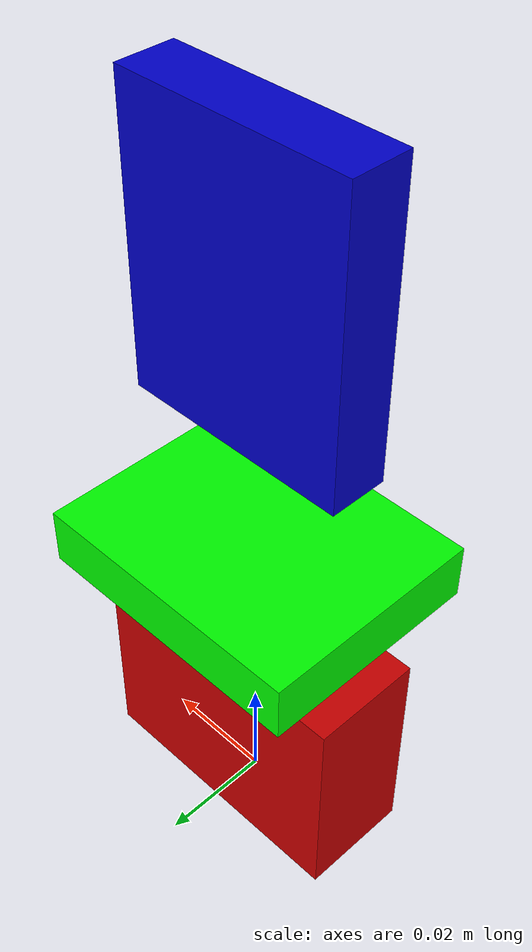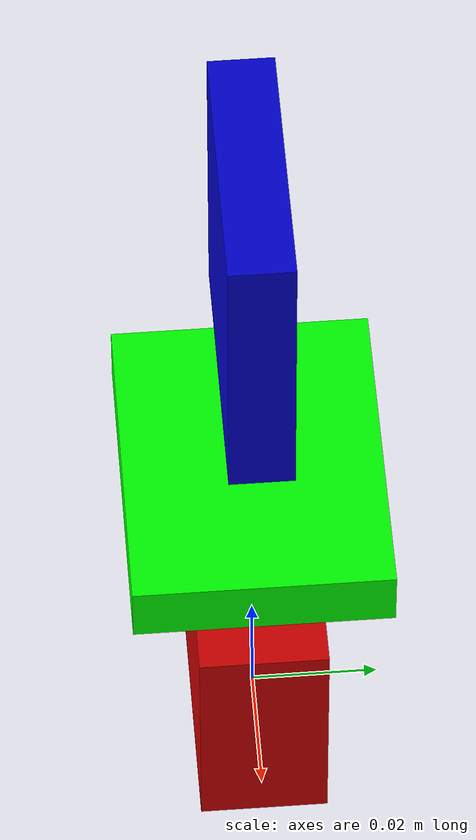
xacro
<?xml version="1.0"?>
<!-- 2DOF camera platform -->
<!-- https://www.aliexpress.com/item/1005005484954172.html -->

<robot xmlns:xacro="http://www.ros.org/wiki/xacro" name="2dof_robot">

  <!-- Import RRBot macro -->
  <xacro:include filename="$(find rrbot)/urdf/description.xacro" />

  <!-- Import Rviz colors -->
  <xacro:include filename="$(find rrbot)/urdf/materials.xacro" />

  <!-- Import RRBot ros2_control description -->
  <xacro:include filename="$(find rrbot)/urdf/control.xacro" />

  <!-- Used for fixing robot -->
  <link name="world"/>

  <xacro:rrbot parent="world">
    <origin xyz="0 0 0" rpy="0 0 0" />
  </xacro:rrbot>

  <xacro:control name="RRBot" />

</robot>

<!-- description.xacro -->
<!-- 2DOF camera platform -->
<!-- https://www.aliexpress.com/item/1005005484954172.html -->
<robot  xmlns:xacro="http://www.ros.org/wiki/xacro">

  <xacro:macro name="rrbot" params="parent *origin">

  <!-- Constants for robot dimensions -->
  <xacro:property name="base_width" value="0.05" />   <!-- Beams are square in length and width -->
  <xacro:property name="base_depth" value="0.02" />   <!-- Beams are square in length and width -->
  <xacro:property name="base_height" value="0.04" />   <!-- Base Link  -->
  <xacro:property name="mid_width" value="0.05" />   <!-- Beams are square in length and width -->
  <xacro:property name="mid_depth" value="0.04" />   <!-- Beams are square in length and width -->
  <xacro:property name="mid_height" value="0.01" />   <!-- Mid Link  -->
  <xacro:property name="top_width" value="0.04" />   <!-- Beams are square in length and width -->
  <xacro:property name="top_depth" value="0.01" />   <!-- Beams are square in length and width -->
  <xacro:property name="top_height" value="0.05" />   <!-- Mid Link  -->
  <xacro:property name="axle_offset" value="0.005" /> <!-- Space between joint and end of beam -->
  <xacro:property name="damp" value="0.7" />    <!-- damping coefficient -->

  <!-- Import Gazebo elements, including Gazebo colors -->
  <xacro:include filename="$(find rrbot)/urdf/gz.xacro" />

  <!-- Import RRBot ros2_control description -->
  <xacro:include filename="$(find rrbot)/urdf/control.xacro" />

  <joint name="base_joint" type="fixed">
    <xacro:insert_block name="origin" />
    <parent link="${parent}"/>
    <child link="base_link" />
  </joint>

  <!-- Base Link -->
  <link name="base_link">
    <visual>
      <origin xyz="0 0 ${base_height/2}" rpy="0 0 0"/>
      <geometry>
	      <box size="${base_width} ${base_depth} ${base_height}"/>
      </geometry>
       <material name="red"/>
    </visual>

    <collision>
      <origin xyz="0 0 ${base_height/2}" rpy="0 0 0"/>
      <geometry>
	      <box size="${base_width} ${base_depth} ${base_height}"/>
      </geometry>
    </collision>

    <inertial>
      <origin xyz="0 0 ${base_height/2}" rpy="0 0 0"/>
      <mass value="1"/>
      <inertia
	  ixx="1.0" ixy="0.0" ixz="0.0"
	  iyy="1.0" iyz="0.0"
	  izz="1.0"/>
    </inertial>
  </link>

  <!-- Joint between Base Link and Middle Link -->
  <joint name="joint_base_mid" type="revolute">
    <parent link="base_link"/>
    <child link="mid_link"/>
    <origin xyz="0 0 ${base_height + axle_offset}" rpy="0 0 0"/>
    <axis xyz="0 0 1"/>
    <dynamics damping="${damp}"/>
    <limit effort="100.0" velocity="0.5" lower="-1.57" upper="1.57" />
  </joint>

  <!-- Middle Link -->
  <link name="mid_link">
    <visual>
      <origin xyz="0 0 ${mid_height/2 + axle_offset}" rpy="0 0 0"/>
      <geometry>
	      <box size="${mid_width} ${mid_depth} ${mid_height}"/>
      </geometry>
       <material name="green"/>
    </visual>

    <collision>
      <origin xyz="0 0 ${mid_height/2 + axle_offset}" rpy="0 0 0"/>
      <geometry>
	      <box size="${mid_width} ${mid_depth} ${mid_height}"/>
      </geometry>
    </collision>

    <inertial>
      <origin xyz="0 0 ${mid_height/2 + axle_offset}" rpy="0 0 0"/>
      <mass value="1"/>
      <inertia
	  ixx="1.0" ixy="0.0" ixz="0.0"
	  iyy="1.0" iyz="0.0"
	  izz="1.0"/>
    </inertial>
  </link>

  <!-- Joint between Middle Link and Top Link -->
  <joint name="joint_mid_top" type="revolute">
    <parent link="mid_link"/>
    <child link="top_link"/>
    <origin xyz="0 0 ${top_height + axle_offset*2}" rpy="0 0 0"/>
    <axis xyz="1 0 0"/>
    <dynamics damping="${damp}"/>
    <limit effort="100.0" velocity="0.5" lower="-1.57" upper="1.57" />
  </joint>

  <!-- Top Link -->
  <link name="top_link">
    <visual>
      <origin xyz="0 0 0" rpy="0 0 0"/>
      <geometry>
	      <box size="${top_width} ${top_depth} ${top_height}"/>
      </geometry>
      <material name="blue"/>
    </visual>

    <collision>
      <origin xyz="0 0 ${top_height/2 - axle_offset}" rpy="0 0 0"/>
      <geometry>
	<box size="${top_width} ${top_depth} ${top_height}"/>
      </geometry>
    </collision>

    <inertial>
      <origin xyz="0 0 0" rpy="0 0 0"/>
      <mass value="1"/>
      <inertia
	  ixx="1.0" ixy="0.0" ixz="0.0"
	  iyy="1.0" iyz="0.0"
	  izz="1.0"/>
    </inertial>
  </link>
  </xacro:macro>
</robot>

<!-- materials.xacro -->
<robot>

  <material name="black">
    <color rgba="0.0 0.0 0.0 1.0"/>
  </material>

  <material name="blue">
    <color rgba="0.0 0.0 0.8 1.0"/>
  </material>

  <material name="green">
    <color rgba="0.0 1.0 0.0 1.0"/>
  </material>

  <material name="grey">
    <color rgba="0.2 0.2 0.2 1.0"/>
  </material>

  <material name="orange">
    <color rgba="${255/255} ${108/255} ${10/255} 1.0"/>
  </material>

  <material name="brown">
    <color rgba="${222/255} ${207/255} ${195/255} 1.0"/>
  </material>

  <material name="red">
    <color rgba="0.8 0.0 0.0 1.0"/>
  </material>

  <material name="white">
    <color rgba="1.0 1.0 1.0 1.0"/>
  </material>

</robot>
